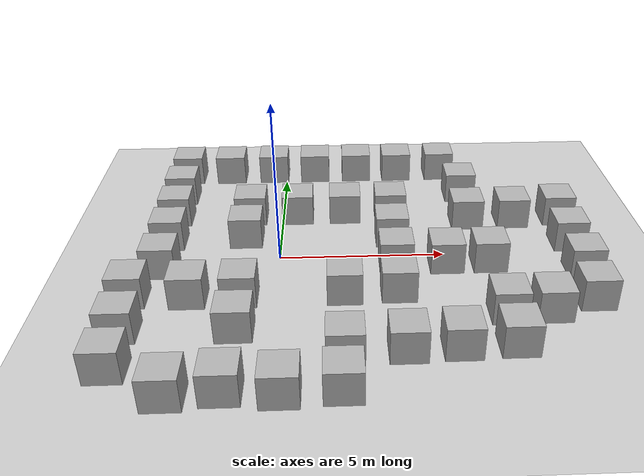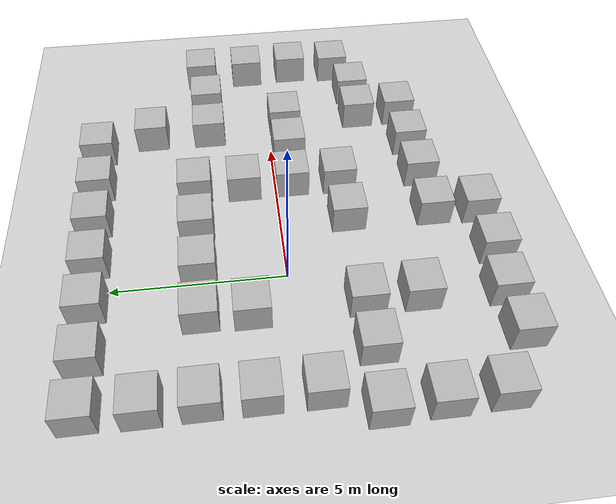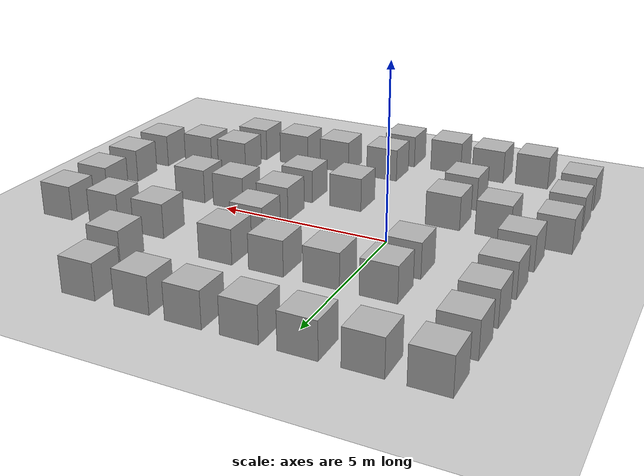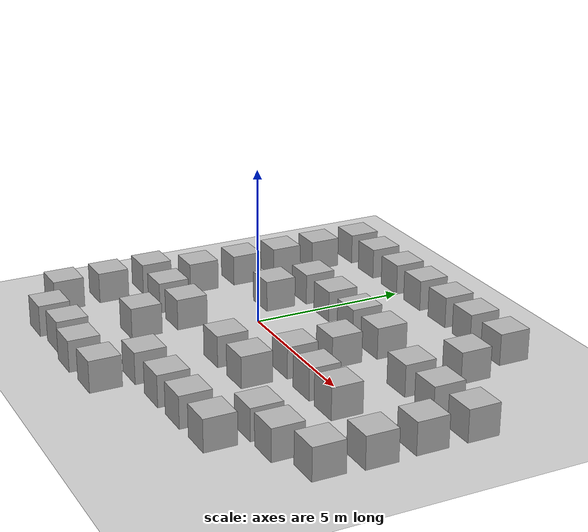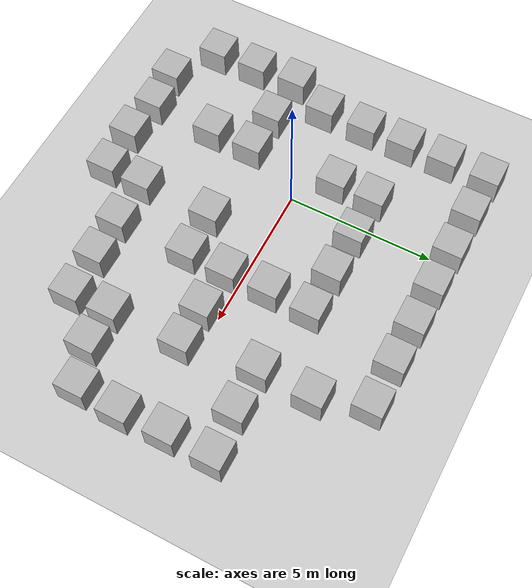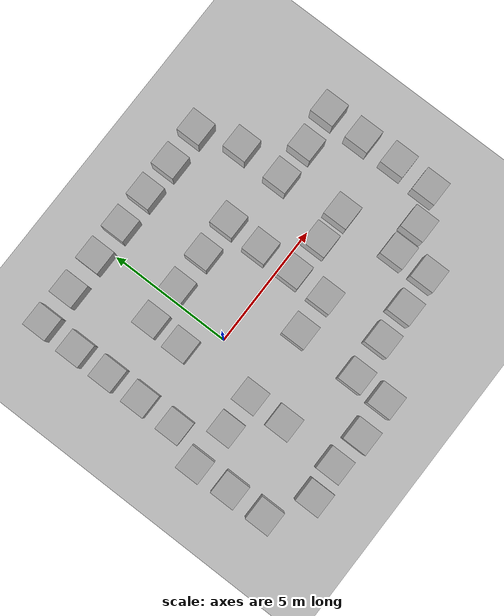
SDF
<sdf version='1.10'>
  <world name='empty'>
    <spherical_coordinates>
      <surface_model>EARTH_WGS84</surface_model>
      <latitude_deg>37.427500000000002</latitude_deg>
      <longitude_deg>-122.16970000000001</longitude_deg>
      <elevation>30</elevation>
      <heading_deg>0</heading_deg>
    </spherical_coordinates>
    <physics name='1ms' type='ignored'>
      <max_step_size>0.001</max_step_size>
      <real_time_factor>1</real_time_factor>
      <real_time_update_rate>1000</real_time_update_rate>
    </physics>
    <plugin name='gz::sim::systems::Physics' filename='gz-sim-physics-system'/>
    <plugin name='gz::sim::systems::UserCommands' filename='gz-sim-user-commands-system'/>
    <plugin name='gz::sim::systems::SceneBroadcaster' filename='gz-sim-scene-broadcaster-system'/>
    <plugin name='gz::sim::systems::Sensors' filename='gz-sim-sensors-system'>
      <render_engine>ogre2</render_engine>
    </plugin>
    <plugin name='gz::sim::systems::Contact' filename='gz-sim-contact-system'/>
    <gravity>0 0 -9.8000000000000007</gravity>
    <magnetic_field>5.5644999999999998e-06 2.2875799999999999e-05 -4.2388400000000002e-05</magnetic_field>
    <atmosphere type='adiabatic'/>
    <scene>
      <ambient>0.400000006 0.400000006 0.400000006 1</ambient>
      <background>0.699999988 0.699999988 0.699999988 1</background>
      <shadows>true</shadows>
    </scene>
    <model name='ground_plane'>
      <static>true</static>
      <link name='link'>
        <collision name='collision'>
          <geometry>
            <plane>
              <normal>0 0 1</normal>
              <size>100 100</size>
            </plane>
          </geometry>
          <surface>
            <friction>
              <ode/>
            </friction>
            <bounce/>
            <contact/>
          </surface>
        </collision>
        <visual name='visual'>
          <geometry>
            <plane>
              <normal>0 0 1</normal>
              <size>100 100</size>
            </plane>
          </geometry>
          <material>
            <ambient>0.800000012 0.800000012 0.800000012 1</ambient>
            <diffuse>0.800000012 0.800000012 0.800000012 1</diffuse>
            <specular>0.800000012 0.800000012 0.800000012 1</specular>
          </material>
        </visual>
        <pose>0 0 0 0 0 0</pose>
        <inertial>
          <pose>0 0 0 0 0 0</pose>
          <mass>1</mass>
          <inertia>
            <ixx>1</ixx>
            <ixy>0</ixy>
            <ixz>0</ixz>
            <iyy>1</iyy>
            <iyz>0</iyz>
            <izz>1</izz>
          </inertia>
        </inertial>
        <enable_wind>false</enable_wind>
      </link>
      <pose>0 0 0 0 0 0</pose>
      <self_collide>false</self_collide>
    </model>
    <model name='box'>
      <pose>2.4832471883620193 5.5087105763600803 0.49999999990199806 6.2287739151293738e-22 9.3279666454713669e-22 -3.6315533669320137e-22</pose>
      <link name='box_link'>
        <inertial>
          <inertia>
            <ixx>0.16666</ixx>
            <ixy>0</ixy>
            <ixz>0</ixz>
            <iyy>0.16666</iyy>
            <iyz>0</iyz>
            <izz>0.16666</izz>
          </inertia>
          <mass>1</mass>
          <pose>0 0 0 0 0 0</pose>
        </inertial>
        <collision name='box_collision'>
          <geometry>
            <box>
              <size>1 1 1</size>
            </box>
          </geometry>
          <surface>
            <friction>
              <ode/>
            </friction>
            <bounce/>
            <contact/>
          </surface>
        </collision>
        <visual name='box_visual'>
          <geometry>
            <box>
              <size>1 1 1</size>
            </box>
          </geometry>
          <material>
            <ambient>0.300000012 0.300000012 0.300000012 1</ambient>
            <diffuse>0.699999988 0.699999988 0.699999988 1</diffuse>
            <specular>1 1 1 1</specular>
          </material>
        </visual>
        <pose>0 0 0 0 0 0</pose>
        <enable_wind>false</enable_wind>
      </link>
      <static>false</static>
      <self_collide>false</self_collide>
    </model>
    <model name='box_0'>
      <pose>1.0123373033848768 5.4961865883869132 0.49999999990199806 6.2287739151293738e-22 9.3279666454713669e-22 -3.6315533669320137e-22</pose>
      <link name='box_link'>
        <inertial>
          <inertia>
            <ixx>0.16666</ixx>
            <ixy>0</ixy>
            <ixz>0</ixz>
            <iyy>0.16666</iyy>
            <iyz>0</iyz>
            <izz>0.16666</izz>
          </inertia>
          <mass>1</mass>
          <pose>0 0 0 0 0 0</pose>
        </inertial>
        <collision name='box_collision'>
          <geometry>
            <box>
              <size>1 1 1</size>
            </box>
          </geometry>
          <surface>
            <friction>
              <ode/>
            </friction>
            <bounce/>
            <contact/>
          </surface>
        </collision>
        <visual name='box_visual'>
          <geometry>
            <box>
              <size>1 1 1</size>
            </box>
          </geometry>
          <material>
            <ambient>0.300000012 0.300000012 0.300000012 1</ambient>
            <diffuse>0.699999988 0.699999988 0.699999988 1</diffuse>
            <specular>1 1 1 1</specular>
          </material>
        </visual>
        <pose>0 0 0 0 0 0</pose>
        <enable_wind>false</enable_wind>
      </link>
      <static>false</static>
      <self_collide>false</self_collide>
    </model>
    <model name='box_1'>
      <pose>-0.45168222426258109 5.5048325686510449 0.49999999990199806 6.2287739151293738e-22 9.3279666454713669e-22 -3.6315533669320137e-22</pose>
      <link name='box_link'>
        <inertial>
          <inertia>
            <ixx>0.16666</ixx>
            <ixy>0</ixy>
            <ixz>0</ixz>
            <iyy>0.16666</iyy>
            <iyz>0</iyz>
            <izz>0.16666</izz>
          </inertia>
          <mass>1</mass>
          <pose>0 0 0 0 0 0</pose>
        </inertial>
        <collision name='box_collision'>
          <geometry>
            <box>
              <size>1 1 1</size>
            </box>
          </geometry>
          <surface>
            <friction>
              <ode/>
            </friction>
            <bounce/>
            <contact/>
          </surface>
        </collision>
        <visual name='box_visual'>
          <geometry>
            <box>
              <size>1 1 1</size>
            </box>
          </geometry>
          <material>
            <ambient>0.300000012 0.300000012 0.300000012 1</ambient>
            <diffuse>0.699999988 0.699999988 0.699999988 1</diffuse>
            <specular>1 1 1 1</specular>
          </material>
        </visual>
        <pose>0 0 0 0 0 0</pose>
        <enable_wind>false</enable_wind>
      </link>
      <static>false</static>
      <self_collide>false</self_collide>
    </model>
    <model name='box_2'>
      <pose>-1.9844544308992618 5.4929854190887912 0.49999999990199806 1.9092798690176341e-21 9.8257477611175817e-22 -3.247192193167585e-22</pose>
      <link name='box_link'>
        <inertial>
          <inertia>
            <ixx>0.16666</ixx>
            <ixy>0</ixy>
            <ixz>0</ixz>
            <iyy>0.16666</iyy>
            <iyz>0</iyz>
            <izz>0.16666</izz>
          </inertia>
          <mass>1</mass>
          <pose>0 0 0 0 0 0</pose>
        </inertial>
        <collision name='box_collision'>
          <geometry>
            <box>
              <size>1 1 1</size>
            </box>
          </geometry>
          <surface>
            <friction>
              <ode/>
            </friction>
            <bounce/>
            <contact/>
          </surface>
        </collision>
        <visual name='box_visual'>
          <geometry>
            <box>
              <size>1 1 1</size>
            </box>
          </geometry>
          <material>
            <ambient>0.300000012 0.300000012 0.300000012 1</ambient>
            <diffuse>0.699999988 0.699999988 0.699999988 1</diffuse>
            <specular>1 1 1 1</specular>
          </material>
        </visual>
        <pose>0 0 0 0 0 0</pose>
        <enable_wind>false</enable_wind>
      </link>
      <static>false</static>
      <self_collide>false</self_collide>
    </model>
    <model name='box_3'>
      <pose>-3.4817698110571786 5.5075409179637962 0.49999999990199806 6.2287739151293738e-22 9.3279666454713669e-22 -3.6315533669320137e-22</pose>
      <link name='box_link'>
        <inertial>
          <inertia>
            <ixx>0.16666</ixx>
            <ixy>0</ixy>
            <ixz>0</ixz>
            <iyy>0.16666</iyy>
            <iyz>0</iyz>
            <izz>0.16666</izz>
          </inertia>
          <mass>1</mass>
          <pose>0 0 0 0 0 0</pose>
        </inertial>
        <collision name='box_collision'>
          <geometry>
            <box>
              <size>1 1 1</size>
            </box>
          </geometry>
          <surface>
            <friction>
              <ode/>
            </friction>
            <bounce/>
            <contact/>
          </surface>
        </collision>
        <visual name='box_visual'>
          <geometry>
            <box>
              <size>1 1 1</size>
            </box>
          </geometry>
          <material>
            <ambient>0.300000012 0.300000012 0.300000012 1</ambient>
            <diffuse>0.699999988 0.699999988 0.699999988 1</diffuse>
            <specular>1 1 1 1</specular>
          </material>
        </visual>
        <pose>0 0 0 0 0 0</pose>
        <enable_wind>false</enable_wind>
      </link>
      <static>false</static>
      <self_collide>false</self_collide>
    </model>
    <model name='box_4'>
      <pose>-3.5140182329624761 3.9810703100846334 0.49999999990199806 6.2287739151293738e-22 9.3279666454713669e-22 -3.6315533669320137e-22</pose>
      <link name='box_link'>
        <inertial>
          <inertia>
            <ixx>0.16666</ixx>
            <ixy>0</ixy>
            <ixz>0</ixz>
            <iyy>0.16666</iyy>
            <iyz>0</iyz>
            <izz>0.16666</izz>
          </inertia>
          <mass>1</mass>
          <pose>0 0 0 0 0 0</pose>
        </inertial>
        <collision name='box_collision'>
          <geometry>
            <box>
              <size>1 1 1</size>
            </box>
          </geometry>
          <surface>
            <friction>
              <ode/>
            </friction>
            <bounce/>
            <contact/>
          </surface>
        </collision>
        <visual name='box_visual'>
          <geometry>
            <box>
              <size>1 1 1</size>
            </box>
          </geometry>
          <material>
            <ambient>0.300000012 0.300000012 0.300000012 1</ambient>
            <diffuse>0.699999988 0.699999988 0.699999988 1</diffuse>
            <specular>1 1 1 1</specular>
          </material>
        </visual>
        <pose>0 0 0 0 0 0</pose>
        <enable_wind>false</enable_wind>
      </link>
      <static>false</static>
      <self_collide>false</self_collide>
    </model>
    <model name='box_5'>
      <pose>-3.49921280932903 2.5175149802157386 0.49999999990199806 6.2287739151293738e-22 9.3279666454713669e-22 -3.6315533669320137e-22</pose>
      <link name='box_link'>
        <inertial>
          <inertia>
            <ixx>0.16666</ixx>
            <ixy>0</ixy>
            <ixz>0</ixz>
            <iyy>0.16666</iyy>
            <iyz>0</iyz>
            <izz>0.16666</izz>
          </inertia>
          <mass>1</mass>
          <pose>0 0 0 0 0 0</pose>
        </inertial>
        <collision name='box_collision'>
          <geometry>
            <box>
              <size>1 1 1</size>
            </box>
          </geometry>
          <surface>
            <friction>
              <ode/>
            </friction>
            <bounce/>
            <contact/>
          </surface>
        </collision>
        <visual name='box_visual'>
          <geometry>
            <box>
              <size>1 1 1</size>
            </box>
          </geometry>
          <material>
            <ambient>0.300000012 0.300000012 0.300000012 1</ambient>
            <diffuse>0.699999988 0.699999988 0.699999988 1</diffuse>
            <specular>1 1 1 1</specular>
          </material>
        </visual>
        <pose>0 0 0 0 0 0</pose>
        <enable_wind>false</enable_wind>
      </link>
      <static>false</static>
      <self_collide>false</self_collide>
    </model>
    <model name='box_6'>
      <pose>-1.0446241642817387 2.4817936864978165 0.49999999990199806 6.2287739151293738e-22 9.3279666454713669e-22 -3.6315533669320137e-22</pose>
      <link name='box_link'>
        <inertial>
          <inertia>
            <ixx>0.16666</ixx>
            <ixy>0</ixy>
            <ixz>0</ixz>
            <iyy>0.16666</iyy>
            <iyz>0</iyz>
            <izz>0.16666</izz>
          </inertia>
          <mass>1</mass>
          <pose>0 0 0 0 0 0</pose>
        </inertial>
        <collision name='box_collision'>
          <geometry>
            <box>
              <size>1 1 1</size>
            </box>
          </geometry>
          <surface>
            <friction>
              <ode/>
            </friction>
            <bounce/>
            <contact/>
          </surface>
        </collision>
        <visual name='box_visual'>
          <geometry>
            <box>
              <size>1 1 1</size>
            </box>
          </geometry>
          <material>
            <ambient>0.300000012 0.300000012 0.300000012 1</ambient>
            <diffuse>0.699999988 0.699999988 0.699999988 1</diffuse>
            <specular>1 1 1 1</specular>
          </material>
        </visual>
        <pose>0 0 0 0 0 0</pose>
        <enable_wind>false</enable_wind>
      </link>
      <static>false</static>
      <self_collide>false</self_collide>
    </model>
    <model name='box_7'>
      <pose>0.48156745624220365 2.4802077466985497 0.49999999990199806 6.2287739151293738e-22 9.3279666454713669e-22 -3.6315533669320137e-22</pose>
      <link name='box_link'>
        <inertial>
          <inertia>
            <ixx>0.16666</ixx>
            <ixy>0</ixy>
            <ixz>0</ixz>
            <iyy>0.16666</iyy>
            <iyz>0</iyz>
            <izz>0.16666</izz>
          </inertia>
          <mass>1</mass>
          <pose>0 0 0 0 0 0</pose>
        </inertial>
        <collision name='box_collision'>
          <geometry>
            <box>
              <size>1 1 1</size>
            </box>
          </geometry>
          <surface>
            <friction>
              <ode/>
            </friction>
            <bounce/>
            <contact/>
          </surface>
        </collision>
        <visual name='box_visual'>
          <geometry>
            <box>
              <size>1 1 1</size>
            </box>
          </geometry>
          <material>
            <ambient>0.300000012 0.300000012 0.300000012 1</ambient>
            <diffuse>0.699999988 0.699999988 0.699999988 1</diffuse>
            <specular>1 1 1 1</specular>
          </material>
        </visual>
        <pose>0 0 0 0 0 0</pose>
        <enable_wind>false</enable_wind>
      </link>
      <static>false</static>
      <self_collide>false</self_collide>
    </model>
    <model name='box_8'>
      <pose>-3.504014831079151 1.0474633521250838 0.49999999990199806 6.2287739151293738e-22 9.3279666454713669e-22 -3.6315533669320137e-22</pose>
      <link name='box_link'>
        <inertial>
          <inertia>
            <ixx>0.16666</ixx>
            <ixy>0</ixy>
            <ixz>0</ixz>
            <iyy>0.16666</iyy>
            <iyz>0</iyz>
            <izz>0.16666</izz>
          </inertia>
          <mass>1</mass>
          <pose>0 0 0 0 0 0</pose>
        </inertial>
        <collision name='box_collision'>
          <geometry>
            <box>
              <size>1 1 1</size>
            </box>
          </geometry>
          <surface>
            <friction>
              <ode/>
            </friction>
            <bounce/>
            <contact/>
          </surface>
        </collision>
        <visual name='box_visual'>
          <geometry>
            <box>
              <size>1 1 1</size>
            </box>
          </geometry>
          <material>
            <ambient>0.300000012 0.300000012 0.300000012 1</ambient>
            <diffuse>0.699999988 0.699999988 0.699999988 1</diffuse>
            <specular>1 1 1 1</specular>
          </material>
        </visual>
        <pose>0 0 0 0 0 0</pose>
        <enable_wind>false</enable_wind>
      </link>
      <static>false</static>
      <self_collide>false</self_collide>
    </model>
    <model name='box_9'>
      <pose>2.0236946746489433 2.4880357977460457 0.49999999990199806 6.2287739151293738e-22 9.3279666454713669e-22 -3.6315533669320137e-22</pose>
      <link name='box_link'>
        <inertial>
          <inertia>
            <ixx>0.16666</ixx>
            <ixy>0</ixy>
            <ixz>0</ixz>
            <iyy>0.16666</iyy>
            <iyz>0</iyz>
            <izz>0.16666</izz>
          </inertia>
          <mass>1</mass>
          <pose>0 0 0 0 0 0</pose>
        </inertial>
        <collision name='box_collision'>
          <geometry>
            <box>
              <size>1 1 1</size>
            </box>
          </geometry>
          <surface>
            <friction>
              <ode/>
            </friction>
            <bounce/>
            <contact/>
          </surface>
        </collision>
        <visual name='box_visual'>
          <geometry>
            <box>
              <size>1 1 1</size>
            </box>
          </geometry>
          <material>
            <ambient>0.300000012 0.300000012 0.300000012 1</ambient>
            <diffuse>0.699999988 0.699999988 0.699999988 1</diffuse>
            <specular>1 1 1 1</specular>
          </material>
        </visual>
        <pose>0 0 0 0 0 0</pose>
        <enable_wind>false</enable_wind>
      </link>
      <static>false</static>
      <self_collide>false</self_collide>
    </model>
    <model name='box_10'>
      <pose>3.9225023122810514 5.4915683841618925 0.49999999990199806 6.2287739151293738e-22 9.3279666454713669e-22 -3.6315533669320137e-22</pose>
      <link name='box_link'>
        <inertial>
          <inertia>
            <ixx>0.16666</ixx>
            <ixy>0</ixy>
            <ixz>0</ixz>
            <iyy>0.16666</iyy>
            <iyz>0</iyz>
            <izz>0.16666</izz>
          </inertia>
          <mass>1</mass>
          <pose>0 0 0 0 0 0</pose>
        </inertial>
        <collision name='box_collision'>
          <geometry>
            <box>
              <size>1 1 1</size>
            </box>
          </geometry>
          <surface>
            <friction>
              <ode/>
            </friction>
            <bounce/>
            <contact/>
          </surface>
        </collision>
        <visual name='box_visual'>
          <geometry>
            <box>
              <size>1 1 1</size>
            </box>
          </geometry>
          <material>
            <ambient>0.300000012 0.300000012 0.300000012 1</ambient>
            <diffuse>0.699999988 0.699999988 0.699999988 1</diffuse>
            <specular>1 1 1 1</specular>
          </material>
        </visual>
        <pose>0 0 0 0 0 0</pose>
        <enable_wind>false</enable_wind>
      </link>
      <static>false</static>
      <self_collide>false</self_collide>
    </model>
    <model name='box_11'>
      <pose>3.5113351482267623 2.4892422384847843 0.49999999990199806 6.2287739151293738e-22 9.3279666454713669e-22 -3.6315533669320137e-22</pose>
      <link name='box_link'>
        <inertial>
          <inertia>
            <ixx>0.16666</ixx>
            <ixy>0</ixy>
            <ixz>0</ixz>
            <iyy>0.16666</iyy>
            <iyz>0</iyz>
            <izz>0.16666</izz>
          </inertia>
          <mass>1</mass>
          <pose>0 0 0 0 0 0</pose>
        </inertial>
        <collision name='box_collision'>
          <geometry>
            <box>
              <size>1 1 1</size>
            </box>
          </geometry>
          <surface>
            <friction>
              <ode/>
            </friction>
            <bounce/>
            <contact/>
          </surface>
        </collision>
        <visual name='box_visual'>
          <geometry>
            <box>
              <size>1 1 1</size>
            </box>
          </geometry>
          <material>
            <ambient>0.300000012 0.300000012 0.300000012 1</ambient>
            <diffuse>0.699999988 0.699999988 0.699999988 1</diffuse>
            <specular>1 1 1 1</specular>
          </material>
        </visual>
        <pose>0 0 0 0 0 0</pose>
        <enable_wind>false</enable_wind>
      </link>
      <static>false</static>
      <self_collide>false</self_collide>
    </model>
    <model name='box_12'>
      <pose>5.4667843203170712 5.5108404365185546 0.49999999990199806 6.2287739151293738e-22 9.3279666454713669e-22 -3.6315533669320137e-22</pose>
      <link name='box_link'>
        <inertial>
          <inertia>
            <ixx>0.16666</ixx>
            <ixy>0</ixy>
            <ixz>0</ixz>
            <iyy>0.16666</iyy>
            <iyz>0</iyz>
            <izz>0.16666</izz>
          </inertia>
          <mass>1</mass>
          <pose>0 0 0 0 0 0</pose>
        </inertial>
        <collision name='box_collision'>
          <geometry>
            <box>
              <size>1 1 1</size>
            </box>
          </geometry>
          <surface>
            <friction>
              <ode/>
            </friction>
            <bounce/>
            <contact/>
          </surface>
        </collision>
        <visual name='box_visual'>
          <geometry>
            <box>
              <size>1 1 1</size>
            </box>
          </geometry>
          <material>
            <ambient>0.300000012 0.300000012 0.300000012 1</ambient>
            <diffuse>0.699999988 0.699999988 0.699999988 1</diffuse>
            <specular>1 1 1 1</specular>
          </material>
        </visual>
        <pose>0 0 0 0 0 0</pose>
        <enable_wind>false</enable_wind>
      </link>
      <static>false</static>
      <self_collide>false</self_collide>
    </model>
    <model name='box_13'>
      <pose>6.0009498596191406 3.819509744644165 0.49999999990199806 5.8471614828406907e-21 -9.2268157635488845e-21 5.8173385445551799e-22</pose>
      <link name='box_link'>
        <inertial>
          <inertia>
            <ixx>0.16666</ixx>
            <ixy>0</ixy>
            <ixz>0</ixz>
            <iyy>0.16666</iyy>
            <iyz>0</iyz>
            <izz>0.16666</izz>
          </inertia>
          <mass>1</mass>
          <pose>0 0 0 0 0 0</pose>
        </inertial>
        <collision name='box_collision'>
          <geometry>
            <box>
              <size>1 1 1</size>
            </box>
          </geometry>
          <surface>
            <friction>
              <ode/>
            </friction>
            <bounce/>
            <contact/>
          </surface>
        </collision>
        <visual name='box_visual'>
          <geometry>
            <box>
              <size>1 1 1</size>
            </box>
          </geometry>
          <material>
            <ambient>0.300000012 0.300000012 0.300000012 1</ambient>
            <diffuse>0.699999988 0.699999988 0.699999988 1</diffuse>
            <specular>1 1 1 1</specular>
          </material>
        </visual>
        <pose>0 0 0 0 0 0</pose>
        <enable_wind>false</enable_wind>
      </link>
      <static>false</static>
      <self_collide>false</self_collide>
    </model>
    <model name='box_14'>
      <pose>3.4646575892142097 0.99081880460302529 0.49999999990199806 6.2287739151293738e-22 9.3279666454713669e-22 -3.6315533669320137e-22</pose>
      <link name='box_link'>
        <inertial>
          <inertia>
            <ixx>0.16666</ixx>
            <ixy>0</ixy>
            <ixz>0</ixz>
            <iyy>0.16666</iyy>
            <iyz>0</iyz>
            <izz>0.16666</izz>
          </inertia>
          <mass>1</mass>
          <pose>0 0 0 0 0 0</pose>
        </inertial>
        <collision name='box_collision'>
          <geometry>
            <box>
              <size>1 1 1</size>
            </box>
          </geometry>
          <surface>
            <friction>
              <ode/>
            </friction>
            <bounce/>
            <contact/>
          </surface>
        </collision>
        <visual name='box_visual'>
          <geometry>
            <box>
              <size>1 1 1</size>
            </box>
          </geometry>
          <material>
            <ambient>0.300000012 0.300000012 0.300000012 1</ambient>
            <diffuse>0.699999988 0.699999988 0.699999988 1</diffuse>
            <specular>1 1 1 1</specular>
          </material>
        </visual>
        <pose>0 0 0 0 0 0</pose>
        <enable_wind>false</enable_wind>
      </link>
      <static>false</static>
      <self_collide>false</self_collide>
    </model>
    <model name='box_15'>
      <pose>3.4921079685373013 -0.49233442650140424 0.49999999990199806 6.2287739151293738e-22 9.3279666454713669e-22 -3.6315533669320137e-22</pose>
      <link name='box_link'>
        <inertial>
          <inertia>
            <ixx>0.16666</ixx>
            <ixy>0</ixy>
            <ixz>0</ixz>
            <iyy>0.16666</iyy>
            <iyz>0</iyz>
            <izz>0.16666</izz>
          </inertia>
          <mass>1</mass>
          <pose>0 0 0 0 0 0</pose>
        </inertial>
        <collision name='box_collision'>
          <geometry>
            <box>
              <size>1 1 1</size>
            </box>
          </geometry>
          <surface>
            <friction>
              <ode/>
            </friction>
            <bounce/>
            <contact/>
          </surface>
        </collision>
        <visual name='box_visual'>
          <geometry>
            <box>
              <size>1 1 1</size>
            </box>
          </geometry>
          <material>
            <ambient>0.300000012 0.300000012 0.300000012 1</ambient>
            <diffuse>0.699999988 0.699999988 0.699999988 1</diffuse>
            <specular>1 1 1 1</specular>
          </material>
        </visual>
        <pose>0 0 0 0 0 0</pose>
        <enable_wind>false</enable_wind>
      </link>
      <static>false</static>
      <self_collide>false</self_collide>
    </model>
    <model name='box_16'>
      <pose>3.4594410707475598 -1.9484623570601172 0.49999999990199806 6.2287739151293738e-22 9.3279666454713669e-22 -3.6315533669320137e-22</pose>
      <link name='box_link'>
        <inertial>
          <inertia>
            <ixx>0.16666</ixx>
            <ixy>0</ixy>
            <ixz>0</ixz>
            <iyy>0.16666</iyy>
            <iyz>0</iyz>
            <izz>0.16666</izz>
          </inertia>
          <mass>1</mass>
          <pose>0 0 0 0 0 0</pose>
        </inertial>
        <collision name='box_collision'>
          <geometry>
            <box>
              <size>1 1 1</size>
            </box>
          </geometry>
          <surface>
            <friction>
              <ode/>
            </friction>
            <bounce/>
            <contact/>
          </surface>
        </collision>
        <visual name='box_visual'>
          <geometry>
            <box>
              <size>1 1 1</size>
            </box>
          </geometry>
          <material>
            <ambient>0.300000012 0.300000012 0.300000012 1</ambient>
            <diffuse>0.699999988 0.699999988 0.699999988 1</diffuse>
            <specular>1 1 1 1</specular>
          </material>
        </visual>
        <pose>0 0 0 0 0 0</pose>
        <enable_wind>false</enable_wind>
      </link>
      <static>false</static>
      <self_collide>false</self_collide>
    </model>
    <model name='box_17'>
      <pose>1.924730272070883 -1.9941161917627048 0.49999999990199806 6.2287739151293738e-22 9.3279666454713669e-22 -3.6315533669320137e-22</pose>
      <link name='box_link'>
        <inertial>
          <inertia>
            <ixx>0.16666</ixx>
            <ixy>0</ixy>
            <ixz>0</ixz>
            <iyy>0.16666</iyy>
            <iyz>0</iyz>
            <izz>0.16666</izz>
          </inertia>
          <mass>1</mass>
          <pose>0 0 0 0 0 0</pose>
        </inertial>
        <collision name='box_collision'>
          <geometry>
            <box>
              <size>1 1 1</size>
            </box>
          </geometry>
          <surface>
            <friction>
              <ode/>
            </friction>
            <bounce/>
            <contact/>
          </surface>
        </collision>
        <visual name='box_visual'>
          <geometry>
            <box>
              <size>1 1 1</size>
            </box>
          </geometry>
          <material>
            <ambient>0.300000012 0.300000012 0.300000012 1</ambient>
            <diffuse>0.699999988 0.699999988 0.699999988 1</diffuse>
            <specular>1 1 1 1</specular>
          </material>
        </visual>
        <pose>0 0 0 0 0 0</pose>
        <enable_wind>false</enable_wind>
      </link>
      <static>false</static>
      <self_collide>false</self_collide>
    </model>
    <model name='box_18'>
      <pose>-3.5113962249269677 -0.51984869224145314 0.49999999990199806 -1.2882475968350892e-21 1.0678260270065378e-21 4.5561524394932949e-22</pose>
      <link name='box_link'>
        <inertial>
          <inertia>
            <ixx>0.16666</ixx>
            <ixy>0</ixy>
            <ixz>0</ixz>
            <iyy>0.16666</iyy>
            <iyz>0</iyz>
            <izz>0.16666</izz>
          </inertia>
          <mass>1</mass>
          <pose>0 0 0 0 0 0</pose>
        </inertial>
        <collision name='box_collision'>
          <geometry>
            <box>
              <size>1 1 1</size>
            </box>
          </geometry>
          <surface>
            <friction>
              <ode/>
            </friction>
            <bounce/>
            <contact/>
          </surface>
        </collision>
        <visual name='box_visual'>
          <geometry>
            <box>
              <size>1 1 1</size>
            </box>
          </geometry>
          <material>
            <ambient>0.300000012 0.300000012 0.300000012 1</ambient>
            <diffuse>0.699999988 0.699999988 0.699999988 1</diffuse>
            <specular>1 1 1 1</specular>
          </material>
        </visual>
        <pose>0 0 0 0 0 0</pose>
        <enable_wind>false</enable_wind>
      </link>
      <static>false</static>
      <self_collide>false</self_collide>
    </model>
    <model name='box_19'>
      <pose>-1.0324320348642941 -2.0129273758995234 0.49999999990199806 6.2287739151293738e-22 9.3279666454713669e-22 -3.6315533669320137e-22</pose>
      <link name='box_link'>
        <inertial>
          <inertia>
            <ixx>0.16666</ixx>
            <ixy>0</ixy>
            <ixz>0</ixz>
            <iyy>0.16666</iyy>
            <iyz>0</iyz>
            <izz>0.16666</izz>
          </inertia>
          <mass>1</mass>
          <pose>0 0 0 0 0 0</pose>
        </inertial>
        <collision name='box_collision'>
          <geometry>
            <box>
              <size>1 1 1</size>
            </box>
          </geometry>
          <surface>
            <friction>
              <ode/>
            </friction>
            <bounce/>
            <contact/>
          </surface>
        </collision>
        <visual name='box_visual'>
          <geometry>
            <box>
              <size>1 1 1</size>
            </box>
          </geometry>
          <material>
            <ambient>0.300000012 0.300000012 0.300000012 1</ambient>
            <diffuse>0.699999988 0.699999988 0.699999988 1</diffuse>
            <specular>1 1 1 1</specular>
          </material>
        </visual>
        <pose>0 0 0 0 0 0</pose>
        <enable_wind>false</enable_wind>
      </link>
      <static>false</static>
      <self_collide>false</self_collide>
    </model>
    <model name='box_20'>
      <pose>-2.4697200135068611 -2.0220484282156965 0.49999999990199806 6.2287739151293738e-22 9.3279666454713669e-22 -3.6315533669320137e-22</pose>
      <link name='box_link'>
        <inertial>
          <inertia>
            <ixx>0.16666</ixx>
            <ixy>0</ixy>
            <ixz>0</ixz>
            <iyy>0.16666</iyy>
            <iyz>0</iyz>
            <izz>0.16666</izz>
          </inertia>
          <mass>1</mass>
          <pose>0 0 0 0 0 0</pose>
        </inertial>
        <collision name='box_collision'>
          <geometry>
            <box>
              <size>1 1 1</size>
            </box>
          </geometry>
          <surface>
            <friction>
              <ode/>
            </friction>
            <bounce/>
            <contact/>
          </surface>
        </collision>
        <visual name='box_visual'>
          <geometry>
            <box>
              <size>1 1 1</size>
            </box>
          </geometry>
          <material>
            <ambient>0.300000012 0.300000012 0.300000012 1</ambient>
            <diffuse>0.699999988 0.699999988 0.699999988 1</diffuse>
            <specular>1 1 1 1</specular>
          </material>
        </visual>
        <pose>0 0 0 0 0 0</pose>
        <enable_wind>false</enable_wind>
      </link>
      <static>false</static>
      <self_collide>false</self_collide>
    </model>
    <model name='box_21'>
      <pose>-1.0327689076655975 -3.5306367400090903 0.49999999990199806 -4.9431071861903433e-22 9.8960145325785522e-22 1.6714802379934959e-22</pose>
      <link name='box_link'>
        <inertial>
          <inertia>
            <ixx>0.16666</ixx>
            <ixy>0</ixy>
            <ixz>0</ixz>
            <iyy>0.16666</iyy>
            <iyz>0</iyz>
            <izz>0.16666</izz>
          </inertia>
          <mass>1</mass>
          <pose>0 0 0 0 0 0</pose>
        </inertial>
        <collision name='box_collision'>
          <geometry>
            <box>
              <size>1 1 1</size>
            </box>
          </geometry>
          <surface>
            <friction>
              <ode/>
            </friction>
            <bounce/>
            <contact/>
          </surface>
        </collision>
        <visual name='box_visual'>
          <geometry>
            <box>
              <size>1 1 1</size>
            </box>
          </geometry>
          <material>
            <ambient>0.300000012 0.300000012 0.300000012 1</ambient>
            <diffuse>0.699999988 0.699999988 0.699999988 1</diffuse>
            <specular>1 1 1 1</specular>
          </material>
        </visual>
        <pose>0 0 0 0 0 0</pose>
        <enable_wind>false</enable_wind>
      </link>
      <static>false</static>
      <self_collide>false</self_collide>
    </model>
    <model name='box_22'>
      <pose>-4.1427489094957073 -1.9285689751405029 0.49999999990199806 6.2287739151293738e-22 9.3279666454713669e-22 -3.6315533669320137e-22</pose>
      <link name='box_link'>
        <inertial>
          <inertia>
            <ixx>0.16666</ixx>
            <ixy>0</ixy>
            <ixz>0</ixz>
            <iyy>0.16666</iyy>
            <iyz>0</iyz>
            <izz>0.16666</izz>
          </inertia>
          <mass>1</mass>
          <pose>0 0 0 0 0 0</pose>
        </inertial>
        <collision name='box_collision'>
          <geometry>
            <box>
              <size>1 1 1</size>
            </box>
          </geometry>
          <surface>
            <friction>
              <ode/>
            </friction>
            <bounce/>
            <contact/>
          </surface>
        </collision>
        <visual name='box_visual'>
          <geometry>
            <box>
              <size>1 1 1</size>
            </box>
          </geometry>
          <material>
            <ambient>0.300000012 0.300000012 0.300000012 1</ambient>
            <diffuse>0.699999988 0.699999988 0.699999988 1</diffuse>
            <specular>1 1 1 1</specular>
          </material>
        </visual>
        <pose>0 0 0 0 0 0</pose>
        <enable_wind>false</enable_wind>
      </link>
      <static>false</static>
      <self_collide>false</self_collide>
    </model>
    <model name='box_23'>
      <pose>-4.0840318673584264 -3.4553748432160436 0.49999999990199806 6.2287739151293738e-22 9.3279666454713669e-22 -3.6315533669320137e-22</pose>
      <link name='box_link'>
        <inertial>
          <inertia>
            <ixx>0.16666</ixx>
            <ixy>0</ixy>
            <ixz>0</ixz>
            <iyy>0.16666</iyy>
            <iyz>0</iyz>
            <izz>0.16666</izz>
          </inertia>
          <mass>1</mass>
          <pose>0 0 0 0 0 0</pose>
        </inertial>
        <collision name='box_collision'>
          <geometry>
            <box>
              <size>1 1 1</size>
            </box>
          </geometry>
          <surface>
            <friction>
              <ode/>
            </friction>
            <bounce/>
            <contact/>
          </surface>
        </collision>
        <visual name='box_visual'>
          <geometry>
            <box>
              <size>1 1 1</size>
            </box>
          </geometry>
          <material>
            <ambient>0.300000012 0.300000012 0.300000012 1</ambient>
            <diffuse>0.699999988 0.699999988 0.699999988 1</diffuse>
            <specular>1 1 1 1</specular>
          </material>
        </visual>
        <pose>0 0 0 0 0 0</pose>
        <enable_wind>false</enable_wind>
      </link>
      <static>false</static>
      <self_collide>false</self_collide>
    </model>
    <model name='box_24'>
      <pose>-4.0506631097095127 -4.9824199874840094 0.49999999990199806 6.2287739151293738e-22 9.3279666454713669e-22 -3.6315533669320137e-22</pose>
      <link name='box_link'>
        <inertial>
          <inertia>
            <ixx>0.16666</ixx>
            <ixy>0</ixy>
            <ixz>0</ixz>
            <iyy>0.16666</iyy>
            <iyz>0</iyz>
            <izz>0.16666</izz>
          </inertia>
          <mass>1</mass>
          <pose>0 0 0 0 0 0</pose>
        </inertial>
        <collision name='box_collision'>
          <geometry>
            <box>
              <size>1 1 1</size>
            </box>
          </geometry>
          <surface>
            <friction>
              <ode/>
            </friction>
            <bounce/>
            <contact/>
          </surface>
        </collision>
        <visual name='box_visual'>
          <geometry>
            <box>
              <size>1 1 1</size>
            </box>
          </geometry>
          <material>
            <ambient>0.300000012 0.300000012 0.300000012 1</ambient>
            <diffuse>0.699999988 0.699999988 0.699999988 1</diffuse>
            <specular>1 1 1 1</specular>
          </material>
        </visual>
        <pose>0 0 0 0 0 0</pose>
        <enable_wind>false</enable_wind>
      </link>
      <static>false</static>
      <self_collide>false</self_collide>
    </model>
    <model name='box_25'>
      <pose>-1.1173280560044816 -5.8733062920437362 0.49999999990199806 6.2287739151293738e-22 9.3279666454713669e-22 -3.6315533669320137e-22</pose>
      <link name='box_link'>
        <inertial>
          <inertia>
            <ixx>0.16666</ixx>
            <ixy>0</ixy>
            <ixz>0</ixz>
            <iyy>0.16666</iyy>
            <iyz>0</iyz>
            <izz>0.16666</izz>
          </inertia>
          <mass>1</mass>
          <pose>0 0 0 0 0 0</pose>
        </inertial>
        <collision name='box_collision'>
          <geometry>
            <box>
              <size>1 1 1</size>
            </box>
          </geometry>
          <surface>
            <friction>
              <ode/>
            </friction>
            <bounce/>
            <contact/>
          </surface>
        </collision>
        <visual name='box_visual'>
          <geometry>
            <box>
              <size>1 1 1</size>
            </box>
          </geometry>
          <material>
            <ambient>0.300000012 0.300000012 0.300000012 1</ambient>
            <diffuse>0.699999988 0.699999988 0.699999988 1</diffuse>
            <specular>1 1 1 1</specular>
          </material>
        </visual>
        <pose>0 0 0 0 0 0</pose>
        <enable_wind>false</enable_wind>
      </link>
      <static>false</static>
      <self_collide>false</self_collide>
    </model>
    <model name='box_26'>
      <pose>-2.4654892007592126 -5.9873901750038243 0.49999999990199806 6.2287739151293738e-22 9.3279666454713669e-22 -3.6315533669320137e-22</pose>
      <link name='box_link'>
        <inertial>
          <inertia>
            <ixx>0.16666</ixx>
            <ixy>0</ixy>
            <ixz>0</ixz>
            <iyy>0.16666</iyy>
            <iyz>0</iyz>
            <izz>0.16666</izz>
          </inertia>
          <mass>1</mass>
          <pose>0 0 0 0 0 0</pose>
        </inertial>
        <collision name='box_collision'>
          <geometry>
            <box>
              <size>1 1 1</size>
            </box>
          </geometry>
          <surface>
            <friction>
              <ode/>
            </friction>
            <bounce/>
            <contact/>
          </surface>
        </collision>
        <visual name='box_visual'>
          <geometry>
            <box>
              <size>1 1 1</size>
            </box>
          </geometry>
          <material>
            <ambient>0.300000012 0.300000012 0.300000012 1</ambient>
            <diffuse>0.699999988 0.699999988 0.699999988 1</diffuse>
            <specular>1 1 1 1</specular>
          </material>
        </visual>
        <pose>0 0 0 0 0 0</pose>
        <enable_wind>false</enable_wind>
      </link>
      <static>false</static>
      <self_collide>false</self_collide>
    </model>
    <model name='box_27'>
      <pose>1.8826228812407404 -4.5662742870809545 0.49999999990199806 6.2287739151293738e-22 9.3279666454713669e-22 -3.6315533669320137e-22</pose>
      <link name='box_link'>
        <inertial>
          <inertia>
            <ixx>0.16666</ixx>
            <ixy>0</ixy>
            <ixz>0</ixz>
            <iyy>0.16666</iyy>
            <iyz>0</iyz>
            <izz>0.16666</izz>
          </inertia>
          <mass>1</mass>
          <pose>0 0 0 0 0 0</pose>
        </inertial>
        <collision name='box_collision'>
          <geometry>
            <box>
              <size>1 1 1</size>
            </box>
          </geometry>
          <surface>
            <friction>
              <ode/>
            </friction>
            <bounce/>
            <contact/>
          </surface>
        </collision>
        <visual name='box_visual'>
          <geometry>
            <box>
              <size>1 1 1</size>
            </box>
          </geometry>
          <material>
            <ambient>0.300000012 0.300000012 0.300000012 1</ambient>
            <diffuse>0.699999988 0.699999988 0.699999988 1</diffuse>
            <specular>1 1 1 1</specular>
          </material>
        </visual>
        <pose>0 0 0 0 0 0</pose>
        <enable_wind>false</enable_wind>
      </link>
      <static>false</static>
      <self_collide>false</self_collide>
    </model>
    <model name='box_28'>
      <pose>1.8174342331362232 -5.9256105182201324 0.49999999990199806 6.2287739151293738e-22 9.3279666454713669e-22 -3.6315533669320137e-22</pose>
      <link name='box_link'>
        <inertial>
          <inertia>
            <ixx>0.16666</ixx>
            <ixy>0</ixy>
            <ixz>0</ixz>
            <iyy>0.16666</iyy>
            <iyz>0</iyz>
            <izz>0.16666</izz>
          </inertia>
          <mass>1</mass>
          <pose>0 0 0 0 0 0</pose>
        </inertial>
        <collision name='box_collision'>
          <geometry>
            <box>
              <size>1 1 1</size>
            </box>
          </geometry>
          <surface>
            <friction>
              <ode/>
            </friction>
            <bounce/>
            <contact/>
          </surface>
        </collision>
        <visual name='box_visual'>
          <geometry>
            <box>
              <size>1 1 1</size>
            </box>
          </geometry>
          <material>
            <ambient>0.300000012 0.300000012 0.300000012 1</ambient>
            <diffuse>0.699999988 0.699999988 0.699999988 1</diffuse>
            <specular>1 1 1 1</specular>
          </material>
        </visual>
        <pose>0 0 0 0 0 0</pose>
        <enable_wind>false</enable_wind>
      </link>
      <static>false</static>
      <self_collide>false</self_collide>
    </model>
    <model name='box_29'>
      <pose>0.29114941091117763 -6.0041535611705532 0.49999999990199806 6.2287739151293738e-22 9.3279666454713669e-22 -3.6315533669320137e-22</pose>
      <link name='box_link'>
        <inertial>
          <inertia>
            <ixx>0.16666</ixx>
            <ixy>0</ixy>
            <ixz>0</ixz>
            <iyy>0.16666</iyy>
            <iyz>0</iyz>
            <izz>0.16666</izz>
          </inertia>
          <mass>1</mass>
          <pose>0 0 0 0 0 0</pose>
        </inertial>
        <collision name='box_collision'>
          <geometry>
            <box>
              <size>1 1 1</size>
            </box>
          </geometry>
          <surface>
            <friction>
              <ode/>
            </friction>
            <bounce/>
            <contact/>
          </surface>
        </collision>
        <visual name='box_visual'>
          <geometry>
            <box>
              <size>1 1 1</size>
            </box>
          </geometry>
          <material>
            <ambient>0.300000012 0.300000012 0.300000012 1</ambient>
            <diffuse>0.699999988 0.699999988 0.699999988 1</diffuse>
            <specular>1 1 1 1</specular>
          </material>
        </visual>
        <pose>0 0 0 0 0 0</pose>
        <enable_wind>false</enable_wind>
      </link>
      <static>false</static>
      <self_collide>false</self_collide>
    </model>
    <model name='box_30'>
      <pose>3.4882636334181498 -4.523633185066938 0.49999999990199806 6.2287739151293738e-22 9.3279666454713669e-22 -3.6315533669320137e-22</pose>
      <link name='box_link'>
        <inertial>
          <inertia>
            <ixx>0.16666</ixx>
            <ixy>0</ixy>
            <ixz>0</ixz>
            <iyy>0.16666</iyy>
            <iyz>0</iyz>
            <izz>0.16666</izz>
          </inertia>
          <mass>1</mass>
          <pose>0 0 0 0 0 0</pose>
        </inertial>
        <collision name='box_collision'>
          <geometry>
            <box>
              <size>1 1 1</size>
            </box>
          </geometry>
          <surface>
            <friction>
              <ode/>
            </friction>
            <bounce/>
            <contact/>
          </surface>
        </collision>
        <visual name='box_visual'>
          <geometry>
            <box>
              <size>1 1 1</size>
            </box>
          </geometry>
          <material>
            <ambient>0.300000012 0.300000012 0.300000012 1</ambient>
            <diffuse>0.699999988 0.699999988 0.699999988 1</diffuse>
            <specular>1 1 1 1</specular>
          </material>
        </visual>
        <pose>0 0 0 0 0 0</pose>
        <enable_wind>false</enable_wind>
      </link>
      <static>false</static>
      <self_collide>false</self_collide>
    </model>
    <model name='box_31'>
      <pose>4.8964173078807818 -4.4677324898076813 0.49999999990199806 6.2287739151293738e-22 9.3279666454713669e-22 -3.6315533669320137e-22</pose>
      <link name='box_link'>
        <inertial>
          <inertia>
            <ixx>0.16666</ixx>
            <ixy>0</ixy>
            <ixz>0</ixz>
            <iyy>0.16666</iyy>
            <iyz>0</iyz>
            <izz>0.16666</izz>
          </inertia>
          <mass>1</mass>
          <pose>0 0 0 0 0 0</pose>
        </inertial>
        <collision name='box_collision'>
          <geometry>
            <box>
              <size>1 1 1</size>
            </box>
          </geometry>
          <surface>
            <friction>
              <ode/>
            </friction>
            <bounce/>
            <contact/>
          </surface>
        </collision>
        <visual name='box_visual'>
          <geometry>
            <box>
              <size>1 1 1</size>
            </box>
          </geometry>
          <material>
            <ambient>0.300000012 0.300000012 0.300000012 1</ambient>
            <diffuse>0.699999988 0.699999988 0.699999988 1</diffuse>
            <specular>1 1 1 1</specular>
          </material>
        </visual>
        <pose>0 0 0 0 0 0</pose>
        <enable_wind>false</enable_wind>
      </link>
      <static>false</static>
      <self_collide>false</self_collide>
    </model>
    <model name='box_32'>
      <pose>6.3670292606834451 -4.4091324767356284 0.49999999990199806 6.2287739151293738e-22 9.3279666454713669e-22 -3.6315533669320137e-22</pose>
      <link name='box_link'>
        <inertial>
          <inertia>
            <ixx>0.16666</ixx>
            <ixy>0</ixy>
            <ixz>0</ixz>
            <iyy>0.16666</iyy>
            <iyz>0</iyz>
            <izz>0.16666</izz>
          </inertia>
          <mass>1</mass>
          <pose>0 0 0 0 0 0</pose>
        </inertial>
        <collision name='box_collision'>
          <geometry>
            <box>
              <size>1 1 1</size>
            </box>
          </geometry>
          <surface>
            <friction>
              <ode/>
            </friction>
            <bounce/>
            <contact/>
          </surface>
        </collision>
        <visual name='box_visual'>
          <geometry>
            <box>
              <size>1 1 1</size>
            </box>
          </geometry>
          <material>
            <ambient>0.300000012 0.300000012 0.300000012 1</ambient>
            <diffuse>0.699999988 0.699999988 0.699999988 1</diffuse>
            <specular>1 1 1 1</specular>
          </material>
        </visual>
        <pose>0 0 0 0 0 0</pose>
        <enable_wind>false</enable_wind>
      </link>
      <static>false</static>
      <self_collide>false</self_collide>
    </model>
    <model name='box_33'>
      <pose>4.9880540436790373 -0.56465157452324677 0.49999999990199806 6.2287739151293738e-22 9.3279666454713669e-22 -3.6315533669320137e-22</pose>
      <link name='box_link'>
        <inertial>
          <inertia>
            <ixx>0.16666</ixx>
            <ixy>0</ixy>
            <ixz>0</ixz>
            <iyy>0.16666</iyy>
            <iyz>0</iyz>
            <izz>0.16666</izz>
          </inertia>
          <mass>1</mass>
          <pose>0 0 0 0 0 0</pose>
        </inertial>
        <collision name='box_collision'>
          <geometry>
            <box>
              <size>1 1 1</size>
            </box>
          </geometry>
          <surface>
            <friction>
              <ode/>
            </friction>
            <bounce/>
            <contact/>
          </surface>
        </collision>
        <visual name='box_visual'>
          <geometry>
            <box>
              <size>1 1 1</size>
            </box>
          </geometry>
          <material>
            <ambient>0.300000012 0.300000012 0.300000012 1</ambient>
            <diffuse>0.699999988 0.699999988 0.699999988 1</diffuse>
            <specular>1 1 1 1</specular>
          </material>
        </visual>
        <pose>0 0 0 0 0 0</pose>
        <enable_wind>false</enable_wind>
      </link>
      <static>false</static>
      <self_collide>false</self_collide>
    </model>
    <model name='box_34'>
      <pose>5.9743830211154663 1.9638087256239967 0.49999999990199806 6.2287739151293738e-22 9.3279666454713669e-22 -3.6315533669320137e-22</pose>
      <link name='box_link'>
        <inertial>
          <inertia>
            <ixx>0.16666</ixx>
            <ixy>0</ixy>
            <ixz>0</ixz>
            <iyy>0.16666</iyy>
            <iyz>0</iyz>
            <izz>0.16666</izz>
          </inertia>
          <mass>1</mass>
          <pose>0 0 0 0 0 0</pose>
        </inertial>
        <collision name='box_collision'>
          <geometry>
            <box>
              <size>1 1 1</size>
            </box>
          </geometry>
          <surface>
            <friction>
              <ode/>
            </friction>
            <bounce/>
            <contact/>
          </surface>
        </collision>
        <visual name='box_visual'>
          <geometry>
            <box>
              <size>1 1 1</size>
            </box>
          </geometry>
          <material>
            <ambient>0.300000012 0.300000012 0.300000012 1</ambient>
            <diffuse>0.699999988 0.699999988 0.699999988 1</diffuse>
            <specular>1 1 1 1</specular>
          </material>
        </visual>
        <pose>0 0 0 0 0 0</pose>
        <enable_wind>false</enable_wind>
      </link>
      <static>false</static>
      <self_collide>false</self_collide>
    </model>
    <model name='box_35'>
      <pose>7.4621952145412571 1.9805900790730027 0.49999999990199806 6.2287739151293738e-22 9.3279666454713669e-22 -3.6315533669320137e-22</pose>
      <link name='box_link'>
        <inertial>
          <inertia>
            <ixx>0.16666</ixx>
            <ixy>0</ixy>
            <ixz>0</ixz>
            <iyy>0.16666</iyy>
            <iyz>0</iyz>
            <izz>0.16666</izz>
          </inertia>
          <mass>1</mass>
          <pose>0 0 0 0 0 0</pose>
        </inertial>
        <collision name='box_collision'>
          <geometry>
            <box>
              <size>1 1 1</size>
            </box>
          </geometry>
          <surface>
            <friction>
              <ode/>
            </friction>
            <bounce/>
            <contact/>
          </surface>
        </collision>
        <visual name='box_visual'>
          <geometry>
            <box>
              <size>1 1 1</size>
            </box>
          </geometry>
          <material>
            <ambient>0.300000012 0.300000012 0.300000012 1</ambient>
            <diffuse>0.699999988 0.699999988 0.699999988 1</diffuse>
            <specular>1 1 1 1</specular>
          </material>
        </visual>
        <pose>0 0 0 0 0 0</pose>
        <enable_wind>false</enable_wind>
      </link>
      <static>false</static>
      <self_collide>false</self_collide>
    </model>
    <model name='box_36'>
      <pose>8.9818372622223652 2.1033517178378265 0.49999999990199806 6.2287739151293738e-22 9.3279666454713669e-22 -3.6315533669320137e-22</pose>
      <link name='box_link'>
        <inertial>
          <inertia>
            <ixx>0.16666</ixx>
            <ixy>0</ixy>
            <ixz>0</ixz>
            <iyy>0.16666</iyy>
            <iyz>0</iyz>
            <izz>0.16666</izz>
          </inertia>
          <mass>1</mass>
          <pose>0 0 0 0 0 0</pose>
        </inertial>
        <collision name='box_collision'>
          <geometry>
            <box>
              <size>1 1 1</size>
            </box>
          </geometry>
          <surface>
            <friction>
              <ode/>
            </friction>
            <bounce/>
            <contact/>
          </surface>
        </collision>
        <visual name='box_visual'>
          <geometry>
            <box>
              <size>1 1 1</size>
            </box>
          </geometry>
          <material>
            <ambient>0.300000012 0.300000012 0.300000012 1</ambient>
            <diffuse>0.699999988 0.699999988 0.699999988 1</diffuse>
            <specular>1 1 1 1</specular>
          </material>
        </visual>
        <pose>0 0 0 0 0 0</pose>
        <enable_wind>false</enable_wind>
      </link>
      <static>false</static>
      <self_collide>false</self_collide>
    </model>
    <model name='box_37'>
      <pose>6.2838952898030662 -0.5603059529087111 0.49999999990199806 6.2287739151293738e-22 9.3279666454713669e-22 -3.6315533669320137e-22</pose>
      <link name='box_link'>
        <inertial>
          <inertia>
            <ixx>0.16666</ixx>
            <ixy>0</ixy>
            <ixz>0</ixz>
            <iyy>0.16666</iyy>
            <iyz>0</iyz>
            <izz>0.16666</izz>
          </inertia>
          <mass>1</mass>
          <pose>0 0 0 0 0 0</pose>
        </inertial>
        <collision name='box_collision'>
          <geometry>
            <box>
              <size>1 1 1</size>
            </box>
          </geometry>
          <surface>
            <friction>
              <ode/>
            </friction>
            <bounce/>
            <contact/>
          </surface>
        </collision>
        <visual name='box_visual'>
          <geometry>
            <box>
              <size>1 1 1</size>
            </box>
          </geometry>
          <material>
            <ambient>0.300000012 0.300000012 0.300000012 1</ambient>
            <diffuse>0.699999988 0.699999988 0.699999988 1</diffuse>
            <specular>1 1 1 1</specular>
          </material>
        </visual>
        <pose>0 0 0 0 0 0</pose>
        <enable_wind>false</enable_wind>
      </link>
      <static>false</static>
      <self_collide>false</self_collide>
    </model>
    <model name='box_38'>
      <pose>8.9669605571895428 0.52109165698352466 0.49999999990199806 6.2287739151293738e-22 9.3279666454713669e-22 -3.6315533669320137e-22</pose>
      <link name='box_link'>
        <inertial>
          <inertia>
            <ixx>0.16666</ixx>
            <ixy>0</ixy>
            <ixz>0</ixz>
            <iyy>0.16666</iyy>
            <iyz>0</iyz>
            <izz>0.16666</izz>
          </inertia>
          <mass>1</mass>
          <pose>0 0 0 0 0 0</pose>
        </inertial>
        <collision name='box_collision'>
          <geometry>
            <box>
              <size>1 1 1</size>
            </box>
          </geometry>
          <surface>
            <friction>
              <ode/>
            </friction>
            <bounce/>
            <contact/>
          </surface>
        </collision>
        <visual name='box_visual'>
          <geometry>
            <box>
              <size>1 1 1</size>
            </box>
          </geometry>
          <material>
            <ambient>0.300000012 0.300000012 0.300000012 1</ambient>
            <diffuse>0.699999988 0.699999988 0.699999988 1</diffuse>
            <specular>1 1 1 1</specular>
          </material>
        </visual>
        <pose>0 0 0 0 0 0</pose>
        <enable_wind>false</enable_wind>
      </link>
      <static>false</static>
      <self_collide>false</self_collide>
    </model>
    <model name='box_39'>
      <pose>9.0253801345825195 -1.04204261302948 0.49999999990199806 -1.647440536599677e-22 -3.85392872491261e-21 -6.7641536078473672e-22</pose>
      <link name='box_link'>
        <inertial>
          <inertia>
            <ixx>0.16666</ixx>
            <ixy>0</ixy>
            <ixz>0</ixz>
            <iyy>0.16666</iyy>
            <iyz>0</iyz>
            <izz>0.16666</izz>
          </inertia>
          <mass>1</mass>
          <pose>0 0 0 0 0 0</pose>
        </inertial>
        <collision name='box_collision'>
          <geometry>
            <box>
              <size>1 1 1</size>
            </box>
          </geometry>
          <surface>
            <friction>
              <ode/>
            </friction>
            <bounce/>
            <contact/>
          </surface>
        </collision>
        <visual name='box_visual'>
          <geometry>
            <box>
              <size>1 1 1</size>
            </box>
          </geometry>
          <material>
            <ambient>0.300000012 0.300000012 0.300000012 1</ambient>
            <diffuse>0.699999988 0.699999988 0.699999988 1</diffuse>
            <specular>1 1 1 1</specular>
          </material>
        </visual>
        <pose>0 0 0 0 0 0</pose>
        <enable_wind>false</enable_wind>
      </link>
      <static>false</static>
      <self_collide>false</self_collide>
    </model>
    <model name='box_40'>
      <pose>6.3670980792063085 -3.0470414660124057 0.49999999990199806 6.2287739151293738e-22 9.3279666454713669e-22 -3.6315533669320137e-22</pose>
      <link name='box_link'>
        <inertial>
          <inertia>
            <ixx>0.16666</ixx>
            <ixy>0</ixy>
            <ixz>0</ixz>
            <iyy>0.16666</iyy>
            <iyz>0</iyz>
            <izz>0.16666</izz>
          </inertia>
          <mass>1</mass>
          <pose>0 0 0 0 0 0</pose>
        </inertial>
        <collision name='box_collision'>
          <geometry>
            <box>
              <size>1 1 1</size>
            </box>
          </geometry>
          <surface>
            <friction>
              <ode/>
            </friction>
            <bounce/>
            <contact/>
          </surface>
        </collision>
        <visual name='box_visual'>
          <geometry>
            <box>
              <size>1 1 1</size>
            </box>
          </geometry>
          <material>
            <ambient>0.300000012 0.300000012 0.300000012 1</ambient>
            <diffuse>0.699999988 0.699999988 0.699999988 1</diffuse>
            <specular>1 1 1 1</specular>
          </material>
        </visual>
        <pose>0 0 0 0 0 0</pose>
        <enable_wind>false</enable_wind>
      </link>
      <static>false</static>
      <self_collide>false</self_collide>
    </model>
    <model name='box_41'>
      <pose>7.6038894370939616 -3.0335018282446624 0.49999999990199806 6.2287739151293738e-22 9.3279666454713669e-22 -3.6315533669320137e-22</pose>
      <link name='box_link'>
        <inertial>
          <inertia>
            <ixx>0.16666</ixx>
            <ixy>0</ixy>
            <ixz>0</ixz>
            <iyy>0.16666</iyy>
            <iyz>0</iyz>
            <izz>0.16666</izz>
          </inertia>
          <mass>1</mass>
          <pose>0 0 0 0 0 0</pose>
        </inertial>
        <collision name='box_collision'>
          <geometry>
            <box>
              <size>1 1 1</size>
            </box>
          </geometry>
          <surface>
            <friction>
              <ode/>
            </friction>
            <bounce/>
            <contact/>
          </surface>
        </collision>
        <visual name='box_visual'>
          <geometry>
            <box>
              <size>1 1 1</size>
            </box>
          </geometry>
          <material>
            <ambient>0.300000012 0.300000012 0.300000012 1</ambient>
            <diffuse>0.699999988 0.699999988 0.699999988 1</diffuse>
            <specular>1 1 1 1</specular>
          </material>
        </visual>
        <pose>0 0 0 0 0 0</pose>
        <enable_wind>false</enable_wind>
      </link>
      <static>false</static>
      <self_collide>false</self_collide>
    </model>
    <model name='box_42'>
      <pose>8.9341795019071295 -2.5435321910344131 0.49999999990199806 6.2287739151293738e-22 9.3279666454713669e-22 -3.6315533669320137e-22</pose>
      <link name='box_link'>
        <inertial>
          <inertia>
            <ixx>0.16666</ixx>
            <ixy>0</ixy>
            <ixz>0</ixz>
            <iyy>0.16666</iyy>
            <iyz>0</iyz>
            <izz>0.16666</izz>
          </inertia>
          <mass>1</mass>
          <pose>0 0 0 0 0 0</pose>
        </inertial>
        <collision name='box_collision'>
          <geometry>
            <box>
              <size>1 1 1</size>
            </box>
          </geometry>
          <surface>
            <friction>
              <ode/>
            </friction>
            <bounce/>
            <contact/>
          </surface>
        </collision>
        <visual name='box_visual'>
          <geometry>
            <box>
              <size>1 1 1</size>
            </box>
          </geometry>
          <material>
            <ambient>0.300000012 0.300000012 0.300000012 1</ambient>
            <diffuse>0.699999988 0.699999988 0.699999988 1</diffuse>
            <specular>1 1 1 1</specular>
          </material>
        </visual>
        <pose>0 0 0 0 0 0</pose>
        <enable_wind>false</enable_wind>
      </link>
      <static>false</static>
      <self_collide>false</self_collide>
    </model>
    <model name='box_43'>
      <pose>-1.0923433947997658 1.0917112953054318 0.49999999990199806 6.2287739151293738e-22 9.3279666454713669e-22 -3.6315533669320137e-22</pose>
      <link name='box_link'>
        <inertial>
          <inertia>
            <ixx>0.16666</ixx>
            <ixy>0</ixy>
            <ixz>0</ixz>
            <iyy>0.16666</iyy>
            <iyz>0</iyz>
            <izz>0.16666</izz>
          </inertia>
          <mass>1</mass>
          <pose>0 0 0 0 0 0</pose>
        </inertial>
        <collision name='box_collision'>
          <geometry>
            <box>
              <size>1 1 1</size>
            </box>
          </geometry>
          <surface>
            <friction>
              <ode/>
            </friction>
            <bounce/>
            <contact/>
          </surface>
        </collision>
        <visual name='box_visual'>
          <geometry>
            <box>
              <size>1 1 1</size>
            </box>
          </geometry>
          <material>
            <ambient>0.300000012 0.300000012 0.300000012 1</ambient>
            <diffuse>0.699999988 0.699999988 0.699999988 1</diffuse>
            <specular>1 1 1 1</specular>
          </material>
        </visual>
        <pose>0 0 0 0 0 0</pose>
        <enable_wind>false</enable_wind>
      </link>
      <static>false</static>
      <self_collide>false</self_collide>
    </model>
    <light name='sun' type='directional'>
      <pose>0 0 10 0 0 0</pose>
      <cast_shadows>true</cast_shadows>
      <intensity>1</intensity>
      <direction>-0.5 0.10000000000000001 -0.90000000000000002</direction>
      <diffuse>0.800000012 0.800000012 0.800000012 1</diffuse>
      <specular>0.200000003 0.200000003 0.200000003 1</specular>
      <attenuation>
        <range>1000</range>
        <linear>0.01</linear>
        <constant>0.90000000000000002</constant>
        <quadratic>0.001</quadratic>
      </attenuation>
      <spot>
        <inner_angle>0</inner_angle>
        <outer_angle>0</outer_angle>
        <falloff>0</falloff>
      </spot>
    </light>
  </world>
</sdf>
